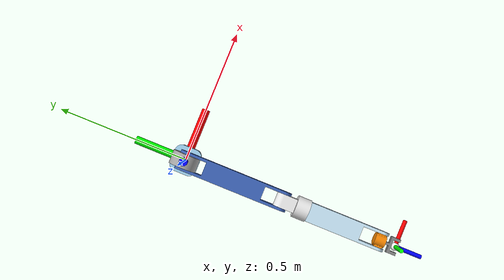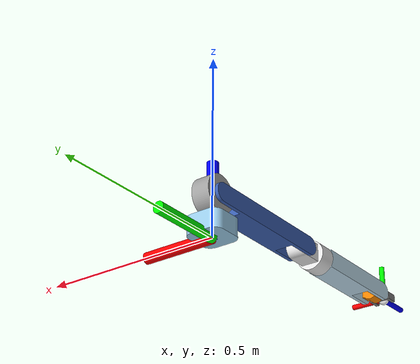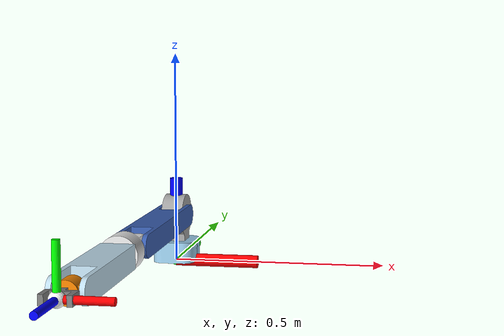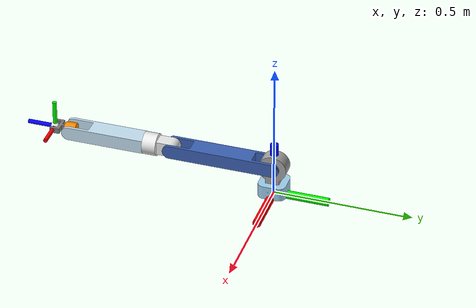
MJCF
<?xml version='1.0' encoding='utf-8'?>

<mujoco model="v2_asm">
  <compiler angle="radian" meshdir="meshes" />
  <option timestep="0.001" gravity="0 0 -9.81"></option>

  <asset>
    <mesh name="s1_v2_1" file="s1_v2_1.stl" />
    <mesh name="s2_v2_1" file="s2_v2_1.stl" />
    <mesh name="upper_arm_v2_1" file="upper_arm_v2_1.stl" />
    <mesh name="w1_v2_1" file="w1_v2_1.stl" />
    <mesh name="forearm_v2_1" file="forearm_v2_1.stl" />
    <mesh name="wrist_1" file="wrist_1.stl" />
    <mesh name="end_eff_1" file="end_eff_1.stl" />
  </asset>

  <contact>
      <exclude name="fix1" body1="link_s1_v2_1" body2="link_s2_v2_1"/>
      <exclude name="fix3" body1="link_forearm_v2_1" body2="link_end_eff_1"/>
  </contact>

  <worldbody>
    <site type="cylinder" name="worldX" pos = "0.1 0 0" euler="0 1.570796 0" size="0.015 0.1" rgba="1 0 0 1" />
    <site type="cylinder" name="worldY" pos = "0 0.1 0" euler="1.570796 0 0" size="0.015 0.1" rgba="0 1 0 1" />
    <site type="cylinder" name="worldZ" pos = "0 0 0.1" euler="0 0 0" size="0.015 0.1" rgba="0 0 1 1" />

    <body name="link_s1_v2_1" pos="0 0 0" quat="0 1 0 0">
      <geom type="mesh" rgba="0.615686 0.811765 0.929412 1" mesh="s1_v2_1" />
      <body name="link_s2_v2_1" pos="0 0 -0.05" quat="0 1 0 0">
        <joint name="joint_revolute_1" pos="0 0 0" axis="0 0 -1" range="-3.14159 3.14159" actuatorfrcrange="-80 80" />
        <geom type="mesh" rgba="0.647059 0.647059 0.647059 1" mesh="s2_v2_1" />
        <body name="link_upper_arm_v2_1" pos="0 0 0.06" quat="0.5 0.5 0.5 0.5">
          <joint name="joint_revolute_2" pos="0 0 0" axis="0 0 1" range="-3.49066 0.436332" actuatorfrcrange="-80 80" />
          <geom type="mesh" rgba="0.231373 0.380392 0.705882 1" mesh="upper_arm_v2_1" />
          <body name="link_w1_v2_1" pos="-0.375 0 0" quat="0 1 0 0">
            <joint name="joint_revolute_3" pos="0 0 0" axis="0 0 1" range="-3.14159 3.14159" actuatorfrcrange="-80 80" />
            <geom type="mesh" rgba="0.917647 0.917647 0.917647 1" mesh="w1_v2_1" />
            <body name="link_forearm_v2_1" pos="-0.1 0 0" quat="0.707107 0 0.707107 0">
              <joint name="joint_revolute_4" pos="0 0 0" axis="0 0 1" range="-6.28 6.28" actuatorfrcrange="-80 80" />
              <geom type="mesh" rgba="0.768627 0.886275 0.952941 1" mesh="forearm_v2_1" />
              <body name="link_wrist_1" pos="0 0 -0.275" quat="0 -0.707107 0 -0.707107">
                <joint name="joint_revolute_5" pos="0 0 0" axis="0 0 1" range="-3.14159 3.14159" actuatorfrcrange="-80 80" />
                <geom type="mesh" rgba="0.972549 0.529412 0.00392157 1" mesh="wrist_1" />
                <body name="link_end_eff_1" pos="-0.02 0 0" quat="0.707107 0 -0.707107 0">
                  <joint name="joint_revolute_6" pos="0 0 0" axis="0 0 1" range="-3.14159 3.14159" actuatorfrcrange="-80 80" />
                  <geom type="mesh" rgba="0.498039 0.498039 0.498039 1" mesh="end_eff_1" />
                  <site type='sphere' size='.015' name='endeff' pos='0 0 0.04' rgba='1 1 1 1'/>
                  <site type="cylinder" name="endeffX" pos = "0.05 0 0.04" euler="0 1.570796 0" size="0.0075 0.05" rgba="1 0 0 1" />
                  <site type="cylinder" name="endeffY" pos = "0 0.05 0.04" euler="1.570796 0 0" size="0.0075 0.05" rgba="0 1 0 1" />
                  <site type="cylinder" name="endeffZ" pos = "0 0 0.09" euler="0 0 0" size="0.0075 0.05" rgba="0 0 1 1" />
                </body>
              </body>
            </body>
          </body>
        </body>
      </body>
    </body>
  </worldbody>
</mujoco>
